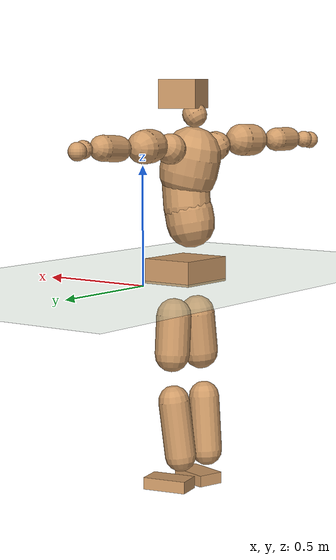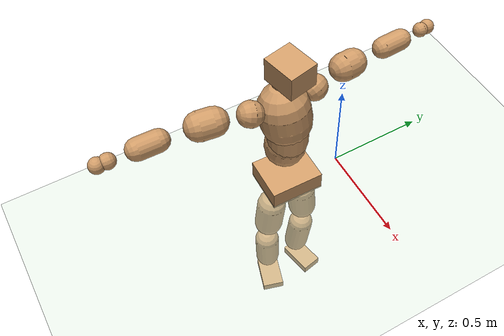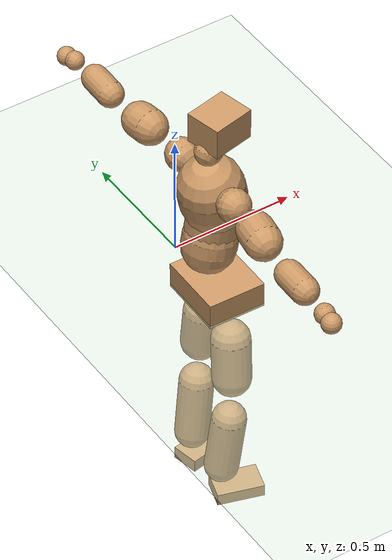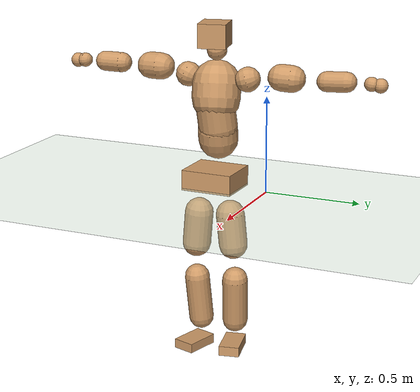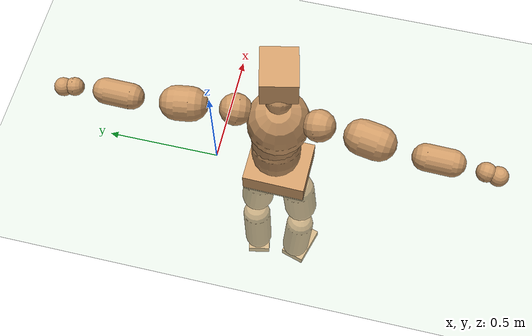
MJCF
<mujoco model="humanoid">
  <compiler coordinate="local" angle="radian"/>
  <default>
    <joint damping="0.0" armature="0.01" stiffness="0.0" limited="true"/>
    <geom conaffinity="1" condim="3" contype="7" margin="0.001" rgba="0.8 0.6 .4 1"/>
  </default>
  <asset>
    <texture type="skybox" builtin="gradient" rgb1=".4 .5 .6" rgb2="0 0 0" width="100" height="100"/>
    <texture builtin="flat" height="1278" mark="cross" markrgb="1 1 1" name="texgeom" random="0.01" rgb1="0.8 0.6 0.4" rgb2="0.8 0.6 0.4" type="cube" width="127"/>
    <texture builtin="checker" height="100" name="texplane" rgb1="0 0 0" rgb2="0.8 0.8 0.8" type="2d" width="100"/>
    <material name="MatPlane" reflectance="0.5" shininess="1" specular="1" texrepeat="60 60" texture="texplane"/>
    <material name="geom" texture="texgeom" texuniform="true"/>
  </asset>
  <worldbody>
    <light cutoff="100" diffuse="1 1 1" dir="-0 0 -1.3" directional="true" exponent="1" pos="0 0 1.3" specular=".1 .1 .1"/>
    <geom conaffinity="1" condim="3" name="floor" pos="0 0 0" rgba="0.8 0.9 0.8 1" size="100 100 .2" type="plane" material="MatPlane"/>
    <body name="Pelvis" pos="0.0036 -0.2904 0.0491">
      <freejoint name="Pelvis"/>
      <geom type="box" contype="1" conaffinity="1" density="5359.374986" pos="-0.0123 0.0002 -0.0083" size="0.1158 0.1366 0.0535" quat="1.0000 0.0000 0.0000 -0.0088" name="Pelvis"/>
      <body name="L_Hip" pos="-0.0117 0.0773 -0.0936">
        <joint name="L_Hip_x" type="hinge" pos="0 0 0" axis="1 0 0" stiffness="1600" damping="160" armature="0.02" range="-180.0000 180.0000"/>
        <joint name="L_Hip_y" type="hinge" pos="0 0 0" axis="0 1 0" stiffness="1600" damping="160" armature="0.02" range="-180.0000 180.0000"/>
        <joint name="L_Hip_z" type="hinge" pos="0 0 0" axis="0 0 1" stiffness="1600" damping="160" armature="0.02" range="-180.0000 180.0000"/>
        <geom type="capsule" contype="1" conaffinity="1" density="2040.816327" size="0.0753" fromto="-0.0017 0.0100 -0.1048 -0.0044 0.0259 -0.2717" name="L_Hip"/>
        <body name="L_Knee" pos="-0.0061 0.036 -0.3765">
          <joint name="L_Knee_x" type="hinge" pos="0 0 0" axis="1 0 0" stiffness="1600" damping="160" armature="0.02" range="-180.0000 180.0000"/>
          <joint name="L_Knee_y" type="hinge" pos="0 0 0" axis="0 1 0" stiffness="1600" damping="160" armature="0.02" range="-180.0000 180.0000"/>
          <joint name="L_Knee_z" type="hinge" pos="0 0 0" axis="0 0 1" stiffness="1600" damping="160" armature="0.02" range="-180.0000 180.0000"/>
          <geom type="capsule" contype="1" conaffinity="1" density="1234.567901" size="0.0676" fromto="-0.0111 -0.0044 -0.0969 -0.0386 -0.0153 -0.3367" name="L_Knee"/>
          <body name="L_Ankle" pos="-0.0497 -0.0198 -0.4335">
            <joint name="L_Ankle_x" type="hinge" pos="0 0 0" axis="1 0 0" stiffness="1600" damping="160" armature="0.02" range="-180.0000 180.0000"/>
            <joint name="L_Ankle_y" type="hinge" pos="0 0 0" axis="0 1 0" stiffness="1600" damping="160" armature="0.02" range="-180.0000 180.0000"/>
            <joint name="L_Ankle_z" type="hinge" pos="0 0 0" axis="0 0 1" stiffness="1600" damping="160" armature="0.02" range="-180.0000 180.0000"/>
            <geom type="box" contype="1" conaffinity="1" density="999.99996" pos="0.0662 0.0132 -0.0303" size="0.0966 0.0542 0.0262" quat="0.9952 0.0000 0.0000 0.0980" name="L_Ankle"/>
            <body name="L_Toe" pos="0.1325 0.0264 -0.0606">
              <joint name="L_Toe_x" type="hinge" pos="0 0 0" axis="1 0 0" stiffness="1000" damping="100" armature="0.02" range="-180.0000 180.0000"/>
              <joint name="L_Toe_y" type="hinge" pos="0 0 0" axis="0 1 0" stiffness="1000" damping="100" armature="0.02" range="-180.0000 180.0000"/>
              <joint name="L_Toe_z" type="hinge" pos="0 0 0" axis="0 0 1" stiffness="1000" damping="100" armature="0.02" range="-180.0000 180.0000"/>
              <geom type="box" contype="1" conaffinity="1" density="8756271.677833" pos="0.0000 0.0000 0.0322" size="0.001 0.0027 0.0014" quat="0.9946 0.0000 0.0000 0.1037" name="L_Toe"/>
            </body>
          </body>
        </body>
      </body>
      <body name="R_Hip" pos="-0.0073 -0.0804 -0.1013">
        <joint name="R_Hip_x" type="hinge" pos="0 0 0" axis="1 0 0" stiffness="1600" damping="160" armature="0.02" range="-180.0000 180.0000"/>
        <joint name="R_Hip_y" type="hinge" pos="0 0 0" axis="0 1 0" stiffness="1600" damping="160" armature="0.02" range="-180.0000 180.0000"/>
        <joint name="R_Hip_z" type="hinge" pos="0 0 0" axis="0 0 1" stiffness="1600" damping="160" armature="0.02" range="-180.0000 180.0000"/>
        <geom type="capsule" contype="1" conaffinity="1" density="2040.816327" size="0.0756" fromto="-0.0040 -0.0106 -0.1050 -0.0106 -0.0284 -0.2803" name="R_Hip"/>
        <body name="R_Knee" pos="-0.0146 -0.039 -0.3853">
          <joint name="R_Knee_x" type="hinge" pos="0 0 0" axis="1 0 0" stiffness="1600" damping="160" armature="0.02" range="-180.0000 180.0000"/>
          <joint name="R_Knee_y" type="hinge" pos="0 0 0" axis="0 1 0" stiffness="1600" damping="160" armature="0.02" range="-180.0000 180.0000"/>
          <joint name="R_Knee_z" type="hinge" pos="0 0 0" axis="0 0 1" stiffness="1600" damping="160" armature="0.02" range="-180.0000 180.0000"/>
          <geom type="capsule" contype="1" conaffinity="1" density="1234.567901" size="0.0667" fromto="-0.0098 0.0051 -0.0961 -0.0343 0.0177 -0.3354" name="R_Knee"/>
          <body name="R_Ankle" pos="-0.0441 0.0227 -0.4314">
            <joint name="R_Ankle_x" type="hinge" pos="0 0 0" axis="1 0 0" stiffness="1600" damping="160" armature="0.02" range="-180.0000 180.0000"/>
            <joint name="R_Ankle_y" type="hinge" pos="0 0 0" axis="0 1 0" stiffness="1600" damping="160" armature="0.02" range="-180.0000 180.0000"/>
            <joint name="R_Ankle_z" type="hinge" pos="0 0 0" axis="0 0 1" stiffness="1600" damping="160" armature="0.02" range="-180.0000 180.0000"/>
            <geom type="box" contype="1" conaffinity="1" density="1000.000047" pos="0.0686 -0.0204 -0.0327" size="0.0926 0.0592 0.0251" quat="0.9896 0.0000 0.0000 -0.1441" name="R_Ankle"/>
            <body name="R_Toe" pos="0.1372 -0.0408 -0.0655">
              <joint name="R_Toe_x" type="hinge" pos="0 0 0" axis="1 0 0" stiffness="1000" damping="100" armature="0.02" range="-180.0000 180.0000"/>
              <joint name="R_Toe_y" type="hinge" pos="0 0 0" axis="0 1 0" stiffness="1000" damping="100" armature="0.02" range="-180.0000 180.0000"/>
              <joint name="R_Toe_z" type="hinge" pos="0 0 0" axis="0 0 1" stiffness="1000" damping="100" armature="0.02" range="-180.0000 180.0000"/>
              <geom type="box" contype="1" conaffinity="1" density="7692254.404596" pos="0.0000 0.0000 0.0346" size="0.0013 0.0029 0.0013" quat="0.9908 0.0000 0.0000 -0.1355" name="R_Toe"/>
            </body>
          </body>
        </body>
      </body>
      <body name="Torso" pos="-0.0544 0.0044 0.1454">
        <joint name="Torso_x" type="hinge" pos="0 0 0" axis="1 0 0" stiffness="2000" damping="200" armature="0.02" range="-180.0000 180.0000"/>
        <joint name="Torso_y" type="hinge" pos="0 0 0" axis="0 1 0" stiffness="2000" damping="200" armature="0.02" range="-180.0000 180.0000"/>
        <joint name="Torso_z" type="hinge" pos="0 0 0" axis="0 0 1" stiffness="2000" damping="200" armature="0.02" range="-180.0000 180.0000"/>
        <geom type="capsule" contype="1" conaffinity="1" density="2040.816327" size="0.1042" fromto="0.0201 0.0028 0.1022 0.0098 0.0014 0.0500" name="Torso"/>
        <body name="Spine" pos="0.03 0.0042 0.1521">
          <joint name="Spine_x" type="hinge" pos="0 0 0" axis="1 0 0" stiffness="2000" damping="200" armature="0.02" range="-180.0000 180.0000"/>
          <joint name="Spine_y" type="hinge" pos="0 0 0" axis="0 1 0" stiffness="2000" damping="200" armature="0.02" range="-180.0000 180.0000"/>
          <joint name="Spine_z" type="hinge" pos="0 0 0" axis="0 0 1" stiffness="2000" damping="200" armature="0.02" range="-180.0000 180.0000"/>
          <geom type="capsule" contype="1" conaffinity="1" density="2040.816327" size="0.1017" fromto="0.0139 -0.0076 0.1005 -0.0052 0.0028 -0.0372" name="Spine"/>
          <body name="Chest" pos="0.0088 -0.0048 0.0633">
            <joint name="Chest_x" type="hinge" pos="0 0 0" axis="1 0 0" stiffness="2000" damping="200" armature="0.02" range="-180.0000 180.0000"/>
            <joint name="Chest_y" type="hinge" pos="0 0 0" axis="0 1 0" stiffness="2000" damping="200" armature="0.02" range="-180.0000 180.0000"/>
            <joint name="Chest_z" type="hinge" pos="0 0 0" axis="0 0 1" stiffness="2000" damping="200" armature="0.02" range="-180.0000 180.0000"/>
            <geom type="capsule" contype="1" conaffinity="1" density="2040.816327" size="0.1259" fromto="-0.0277 -0.0068 0.1226 -0.0116 -0.0028 0.0513" name="Chest"/>
            <body name="Neck" pos="-0.0653 -0.015 0.2538">
              <joint name="Neck_x" type="hinge" pos="0 0 0" axis="1 0 0" stiffness="1000" damping="100" armature="0.02" range="-180.0000 180.0000"/>
              <joint name="Neck_y" type="hinge" pos="0 0 0" axis="0 1 0" stiffness="1000" damping="100" armature="0.02" range="-180.0000 180.0000"/>
              <joint name="Neck_z" type="hinge" pos="0 0 0" axis="0 0 1" stiffness="1000" damping="100" armature="0.02" range="-180.0000 180.0000"/>
              <geom type="capsule" contype="1" conaffinity="1" density="1000" size="0.0523" fromto="0.0265 0.0050 0.0448 0.0248 0.0047 0.0420" name="Neck"/>
              <body name="Head" pos="0.0514 0.0098 0.0868">
                <joint name="Head_x" type="hinge" pos="0 0 0" axis="1 0 0" stiffness="1000" damping="100" armature="0.02" range="-180.0000 180.0000"/>
                <joint name="Head_y" type="hinge" pos="0 0 0" axis="0 1 0" stiffness="1000" damping="100" armature="0.02" range="-180.0000 180.0000"/>
                <joint name="Head_z" type="hinge" pos="0 0 0" axis="0 0 1" stiffness="1000" damping="100" armature="0.02" range="-180.0000 180.0000"/>
                <geom type="box" contype="1" conaffinity="1" density="2249.999795" pos="0.0267 0.0059 0.0444" size="0.0851 0.0724 0.0615" quat="0.9941 0.0000 0.0000 0.1082" name="Head"/>
              </body>
            </body>
            <body name="L_Thorax" pos="-0.023 0.0874 0.1342">
              <joint name="L_Thorax_x" type="hinge" pos="0 0 0" axis="1 0 0" stiffness="1000" damping="100" armature="0.02" range="-180.0000 180.0000"/>
              <joint name="L_Thorax_y" type="hinge" pos="0 0 0" axis="0 1 0" stiffness="1000" damping="100" armature="0.02" range="-180.0000 180.0000"/>
              <joint name="L_Thorax_z" type="hinge" pos="0 0 0" axis="0 0 1" stiffness="1000" damping="100" armature="0.02" range="-180.0000 180.0000"/>
              <geom type="capsule" contype="1" conaffinity="1" density="1000" size="0.0647" fromto="-0.0149 0.0724 0.0229 -0.0153 0.0743 0.0235" name="L_Thorax"/>
              <body name="L_Shoulder" pos="-0.0303 0.1467 0.0464">
                <joint name="L_Shoulder_x" type="hinge" pos="0 0 0" axis="1 0 0" stiffness="1000" damping="100" armature="0.02" range="-720.0000 720.0000"/>
                <joint name="L_Shoulder_y" type="hinge" pos="0 0 0" axis="0 1 0" stiffness="1000" damping="100" armature="0.02" range="-720.0000 720.0000"/>
                <joint name="L_Shoulder_z" type="hinge" pos="0 0 0" axis="0 0 1" stiffness="1000" damping="100" armature="0.02" range="-720.0000 720.0000"/>
                <geom type="capsule" contype="1" conaffinity="1" density="1000" size="0.0692" fromto="-0.0108 0.0985 -0.0049 -0.0169 0.1537 -0.0076" name="L_Shoulder"/>
                <body name="L_Elbow" pos="-0.0277 0.2522 -0.0125">
                  <joint name="L_Elbow_x" type="hinge" pos="0 0 0" axis="1 0 0" stiffness="1000" damping="100" armature="0.02" range="-720.0000 720.0000"/>
                  <joint name="L_Elbow_y" type="hinge" pos="0 0 0" axis="0 1 0" stiffness="1000" damping="100" armature="0.02" range="-720.0000 720.0000"/>
                  <joint name="L_Elbow_z" type="hinge" pos="0 0 0" axis="0 0 1" stiffness="1000" damping="100" armature="0.02" range="-720.0000 720.0000"/>
                  <geom type="capsule" contype="1" conaffinity="1" density="1000" size="0.0518" fromto="-0.0008 0.0817 0.0044 -0.0017 0.1828 0.0098" name="L_Elbow"/>
                  <body name="L_Wrist" pos="-0.0024 0.2645 0.0141">
                    <joint name="L_Wrist_x" type="hinge" pos="0 0 0" axis="1 0 0" stiffness="600" damping="60" armature="0.02" range="-180.0000 180.0000"/>
                    <joint name="L_Wrist_y" type="hinge" pos="0 0 0" axis="0 1 0" stiffness="600" damping="60" armature="0.02" range="-180.0000 180.0000"/>
                    <joint name="L_Wrist_z" type="hinge" pos="0 0 0" axis="0 0 1" stiffness="600" damping="60" armature="0.02" range="-180.0000 180.0000"/>
                    <geom type="capsule" contype="1" conaffinity="1" density="1000" size="0.0362" fromto="-0.0074 0.0430 -0.0054 -0.0077 0.0450 -0.0057" name="L_Wrist"/>
                    <body name="L_Hand" pos="-0.0151 0.088 -0.0111">
                      <joint name="L_Hand_x" type="hinge" pos="0 0 0" axis="1 0 0" stiffness="600" damping="60" armature="0.02" range="-180.0000 180.0000"/>
                      <joint name="L_Hand_y" type="hinge" pos="0 0 0" axis="0 1 0" stiffness="600" damping="60" armature="0.02" range="-180.0000 180.0000"/>
                      <joint name="L_Hand_z" type="hinge" pos="0 0 0" axis="0 0 1" stiffness="600" damping="60" armature="0.02" range="-180.0000 180.0000"/>
                      <geom type="sphere" contype="1" conaffinity="1" density="1000" size="0.0366" pos="0.0000 0.0000 0.0000" name="L_Hand"/>
                    </body>
                  </body>
                </body>
              </body>
            </body>
            <body name="R_Thorax" pos="-0.0295 -0.1013 0.1338">
              <joint name="R_Thorax_x" type="hinge" pos="0 0 0" axis="1 0 0" stiffness="1000" damping="100" armature="0.02" range="-180.0000 180.0000"/>
              <joint name="R_Thorax_y" type="hinge" pos="0 0 0" axis="0 1 0" stiffness="1000" damping="100" armature="0.02" range="-180.0000 180.0000"/>
              <joint name="R_Thorax_z" type="hinge" pos="0 0 0" axis="0 0 1" stiffness="1000" damping="100" armature="0.02" range="-180.0000 180.0000"/>
              <geom type="capsule" contype="1" conaffinity="1" density="1000" size="0.0645" fromto="-0.0082 -0.0678 0.0254 -0.0084 -0.0697 0.0261" name="R_Thorax"/>
              <body name="R_Shoulder" pos="-0.0167 -0.1375 0.0515">
                <joint name="R_Shoulder_x" type="hinge" pos="0 0 0" axis="1 0 0" stiffness="1000" damping="100" armature="0.02" range="-720.0000 720.0000"/>
                <joint name="R_Shoulder_y" type="hinge" pos="0 0 0" axis="0 1 0" stiffness="1000" damping="100" armature="0.02" range="-720.0000 720.0000"/>
                <joint name="R_Shoulder_z" type="hinge" pos="0 0 0" axis="0 0 1" stiffness="1000" damping="100" armature="0.02" range="-720.0000 720.0000"/>
                <geom type="capsule" contype="1" conaffinity="1" density="1000" size="0.0702" fromto="-0.0152 -0.0990 -0.0026 -0.0256 -0.1665 -0.0043" name="R_Shoulder"/>
                <body name="R_Elbow" pos="-0.0409 -0.2655 -0.0068">
                  <joint name="R_Elbow_x" type="hinge" pos="0 0 0" axis="1 0 0" stiffness="1000" damping="100" armature="0.02" range="-720.0000 720.0000"/>
                  <joint name="R_Elbow_y" type="hinge" pos="0 0 0" axis="0 1 0" stiffness="1000" damping="100" armature="0.02" range="-720.0000 720.0000"/>
                  <joint name="R_Elbow_z" type="hinge" pos="0 0 0" axis="0 0 1" stiffness="1000" damping="100" armature="0.02" range="-720.0000 720.0000"/>
                  <geom type="capsule" contype="1" conaffinity="1" density="1000" size="0.0531" fromto="-0.0017 -0.0831 -0.0001 -0.0037 -0.1826 -0.0003" name="R_Elbow"/>
                  <body name="R_Wrist" pos="-0.0054 -0.2657 -0.0005">
                    <joint name="R_Wrist_x" type="hinge" pos="0 0 0" axis="1 0 0" stiffness="600" damping="60" armature="0.02" range="-180.0000 180.0000"/>
                    <joint name="R_Wrist_y" type="hinge" pos="0 0 0" axis="0 1 0" stiffness="600" damping="60" armature="0.02" range="-180.0000 180.0000"/>
                    <joint name="R_Wrist_z" type="hinge" pos="0 0 0" axis="0 0 1" stiffness="600" damping="60" armature="0.02" range="-180.0000 180.0000"/>
                    <geom type="capsule" contype="1" conaffinity="1" density="1000" size="0.0381" fromto="-0.0046 -0.0457 -0.0045 -0.0048 -0.0477 -0.0047" name="R_Wrist"/>
                    <body name="R_Hand" pos="-0.0094 -0.0934 -0.0093">
                      <joint name="R_Hand_x" type="hinge" pos="0 0 0" axis="1 0 0" stiffness="600" damping="60" armature="0.02" range="-180.0000 180.0000"/>
                      <joint name="R_Hand_y" type="hinge" pos="0 0 0" axis="0 1 0" stiffness="600" damping="60" armature="0.02" range="-180.0000 180.0000"/>
                      <joint name="R_Hand_z" type="hinge" pos="0 0 0" axis="0 0 1" stiffness="600" damping="60" armature="0.02" range="-180.0000 180.0000"/>
                      <geom type="sphere" contype="1" conaffinity="1" density="1000" size="0.0384" pos="0.0000 0.0000 0.0000" name="R_Hand"/>
                    </body>
                  </body>
                </body>
              </body>
            </body>
          </body>
        </body>
      </body>
    </body>
  </worldbody>
  <actuator>
    <motor name="L_Hip_x" joint="L_Hip_x" gear="500"/>
    <motor name="L_Hip_y" joint="L_Hip_y" gear="500"/>
    <motor name="L_Hip_z" joint="L_Hip_z" gear="500"/>
    <motor name="L_Knee_x" joint="L_Knee_x" gear="500"/>
    <motor name="L_Knee_y" joint="L_Knee_y" gear="500"/>
    <motor name="L_Knee_z" joint="L_Knee_z" gear="500"/>
    <motor name="L_Ankle_x" joint="L_Ankle_x" gear="500"/>
    <motor name="L_Ankle_y" joint="L_Ankle_y" gear="500"/>
    <motor name="L_Ankle_z" joint="L_Ankle_z" gear="500"/>
    <motor name="L_Toe_x" joint="L_Toe_x" gear="500"/>
    <motor name="L_Toe_y" joint="L_Toe_y" gear="500"/>
    <motor name="L_Toe_z" joint="L_Toe_z" gear="500"/>
    <motor name="R_Hip_x" joint="R_Hip_x" gear="500"/>
    <motor name="R_Hip_y" joint="R_Hip_y" gear="500"/>
    <motor name="R_Hip_z" joint="R_Hip_z" gear="500"/>
    <motor name="R_Knee_x" joint="R_Knee_x" gear="500"/>
    <motor name="R_Knee_y" joint="R_Knee_y" gear="500"/>
    <motor name="R_Knee_z" joint="R_Knee_z" gear="500"/>
    <motor name="R_Ankle_x" joint="R_Ankle_x" gear="500"/>
    <motor name="R_Ankle_y" joint="R_Ankle_y" gear="500"/>
    <motor name="R_Ankle_z" joint="R_Ankle_z" gear="500"/>
    <motor name="R_Toe_x" joint="R_Toe_x" gear="500"/>
    <motor name="R_Toe_y" joint="R_Toe_y" gear="500"/>
    <motor name="R_Toe_z" joint="R_Toe_z" gear="500"/>
    <motor name="Torso_x" joint="Torso_x" gear="500"/>
    <motor name="Torso_y" joint="Torso_y" gear="500"/>
    <motor name="Torso_z" joint="Torso_z" gear="500"/>
    <motor name="Spine_x" joint="Spine_x" gear="500"/>
    <motor name="Spine_y" joint="Spine_y" gear="500"/>
    <motor name="Spine_z" joint="Spine_z" gear="500"/>
    <motor name="Chest_x" joint="Chest_x" gear="500"/>
    <motor name="Chest_y" joint="Chest_y" gear="500"/>
    <motor name="Chest_z" joint="Chest_z" gear="500"/>
    <motor name="Neck_x" joint="Neck_x" gear="500"/>
    <motor name="Neck_y" joint="Neck_y" gear="500"/>
    <motor name="Neck_z" joint="Neck_z" gear="500"/>
    <motor name="Head_x" joint="Head_x" gear="500"/>
    <motor name="Head_y" joint="Head_y" gear="500"/>
    <motor name="Head_z" joint="Head_z" gear="500"/>
    <motor name="L_Thorax_x" joint="L_Thorax_x" gear="500"/>
    <motor name="L_Thorax_y" joint="L_Thorax_y" gear="500"/>
    <motor name="L_Thorax_z" joint="L_Thorax_z" gear="500"/>
    <motor name="L_Shoulder_x" joint="L_Shoulder_x" gear="500"/>
    <motor name="L_Shoulder_y" joint="L_Shoulder_y" gear="500"/>
    <motor name="L_Shoulder_z" joint="L_Shoulder_z" gear="500"/>
    <motor name="L_Elbow_x" joint="L_Elbow_x" gear="500"/>
    <motor name="L_Elbow_y" joint="L_Elbow_y" gear="500"/>
    <motor name="L_Elbow_z" joint="L_Elbow_z" gear="500"/>
    <motor name="L_Wrist_x" joint="L_Wrist_x" gear="500"/>
    <motor name="L_Wrist_y" joint="L_Wrist_y" gear="500"/>
    <motor name="L_Wrist_z" joint="L_Wrist_z" gear="500"/>
    <motor name="L_Hand_x" joint="L_Hand_x" gear="500"/>
    <motor name="L_Hand_y" joint="L_Hand_y" gear="500"/>
    <motor name="L_Hand_z" joint="L_Hand_z" gear="500"/>
    <motor name="R_Thorax_x" joint="R_Thorax_x" gear="500"/>
    <motor name="R_Thorax_y" joint="R_Thorax_y" gear="500"/>
    <motor name="R_Thorax_z" joint="R_Thorax_z" gear="500"/>
    <motor name="R_Shoulder_x" joint="R_Shoulder_x" gear="500"/>
    <motor name="R_Shoulder_y" joint="R_Shoulder_y" gear="500"/>
    <motor name="R_Shoulder_z" joint="R_Shoulder_z" gear="500"/>
    <motor name="R_Elbow_x" joint="R_Elbow_x" gear="500"/>
    <motor name="R_Elbow_y" joint="R_Elbow_y" gear="500"/>
    <motor name="R_Elbow_z" joint="R_Elbow_z" gear="500"/>
    <motor name="R_Wrist_x" joint="R_Wrist_x" gear="500"/>
    <motor name="R_Wrist_y" joint="R_Wrist_y" gear="500"/>
    <motor name="R_Wrist_z" joint="R_Wrist_z" gear="500"/>
    <motor name="R_Hand_x" joint="R_Hand_x" gear="500"/>
    <motor name="R_Hand_y" joint="R_Hand_y" gear="500"/>
    <motor name="R_Hand_z" joint="R_Hand_z" gear="500"/>
  </actuator>
  <contact>
    <exclude body1="Torso" body2="Chest"/>
    <exclude body1="Head" body2="Chest"/>
    <exclude body1="R_Knee" body2="R_Toe"/>
    <exclude body1="R_Knee" body2="L_Ankle"/>
    <exclude body1="R_Knee" body2="L_Toe"/>
    <exclude body1="L_Knee" body2="L_Toe"/>
    <exclude body1="L_Knee" body2="R_Ankle"/>
    <exclude body1="L_Knee" body2="R_Toe"/>
    <exclude body1="L_Shoulder" body2="Chest"/>
    <exclude body1="R_Shoulder" body2="Chest"/>
  </contact>
  <sensor/>
  <size njmax="700" nconmax="700"/>
</mujoco>
